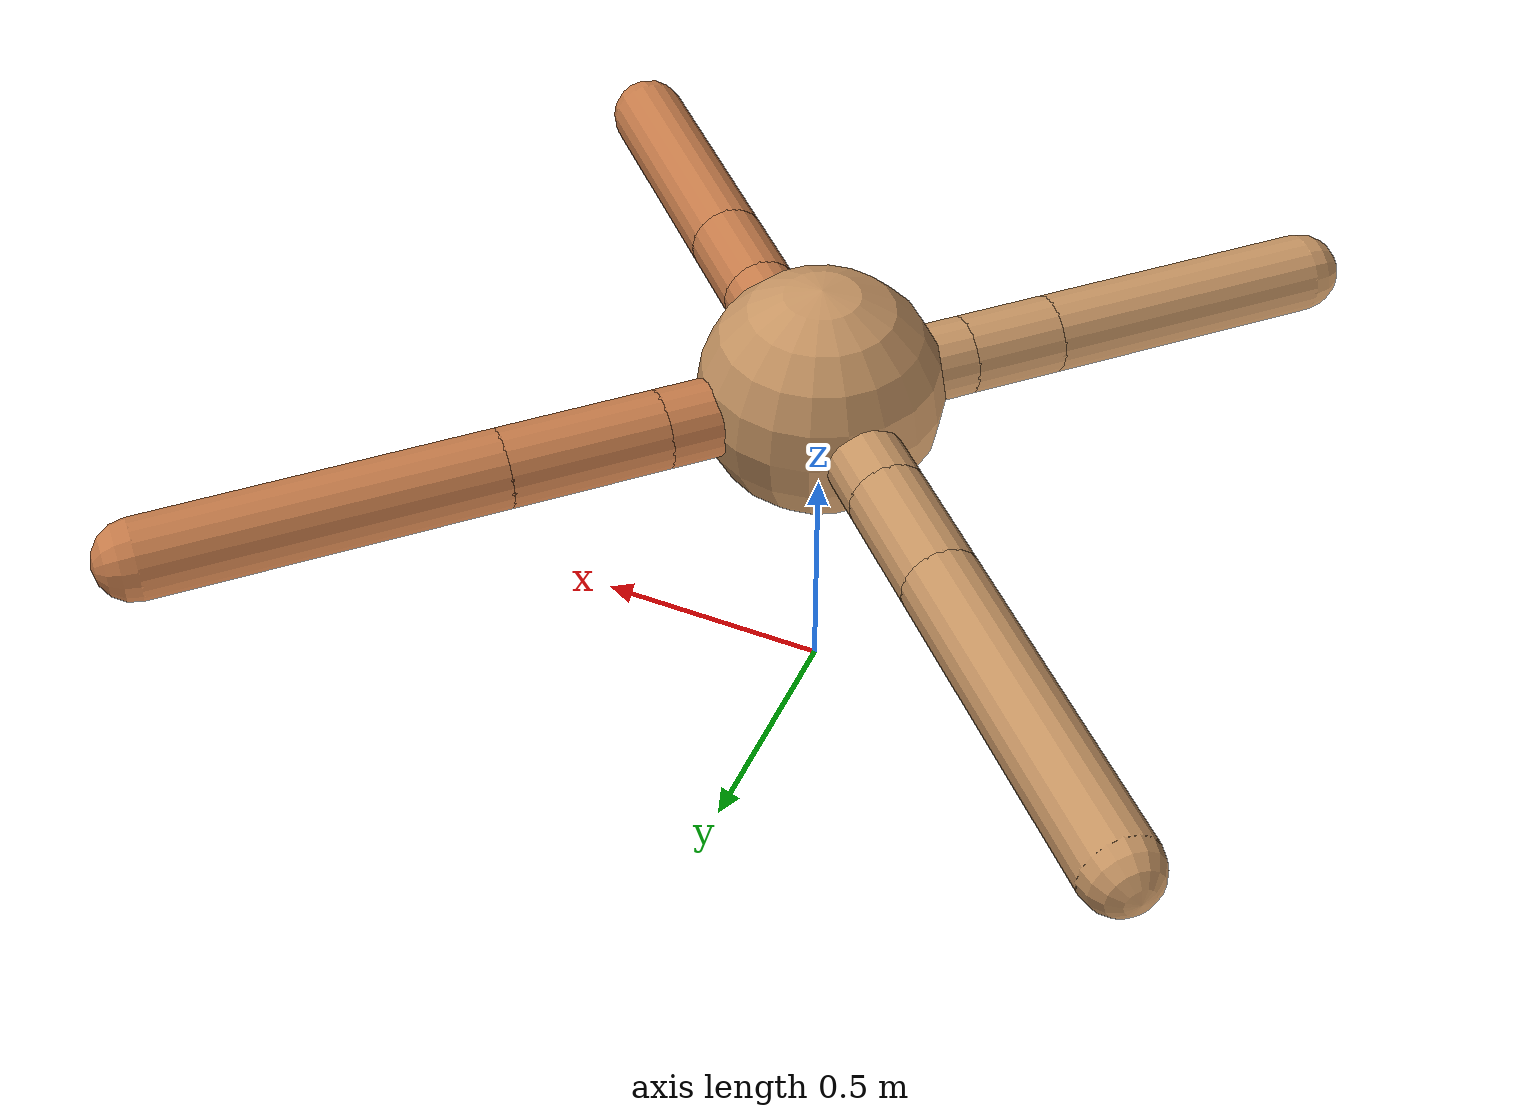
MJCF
<mujoco model="ant">
  <compiler angle="degree" coordinate="local" inertiafromgeom="true" />
  <option integrator="RK4" timestep="0.01" />
  <custom>
    <numeric data="0.0 0.0 0.55 1.0 0.0 0.0 0.0 0.0 1.0 0.0 -1.0 0.0 -1.0 0.0 1.0" name="init_qpos" />
  </custom>
  <default>
    <joint armature="1" damping="1" limited="true" />
    <geom conaffinity="0" condim="3" density="5.0" friction="1.5 0.1 0.1" margin="0.01" rgba="0.8 0.6 0.4 1" />
  </default>
  <worldbody>
    <body name="torso" pos="0 0 0.75">
      <geom name="torso_geom" pos="0 0 0" size="0.25" type="sphere" />

      <body name="front_left_leg" pos="0 0 0">
        <geom fromto="0.0 0.0 0.0 0.2371741470400664 0.2371741470400664 0.0" name="aux_1_geom" size="0.08" type="capsule" rgba=".8 .5 .3 1" />
        <body name="aux_1" pos="0.2371741470400664 0.2371741470400664 0.0">
          <joint axis="0 0 1" name="hip_1" pos="0.0 0.0 0.0" range="-40 40" type="hinge" />
          <geom fromto="0.0 0.0 0.0 0.22891009427981493 0.22891009427981493 0.0" name="left_leg_geom" size="0.08" type="capsule" rgba=".8 .5 .3 1" />
          <body pos="0.22891009427981493 0.22891009427981493 0.0" name="front_left_foot">
            <joint axis="-1 1 0" name="ankle_1" pos="0.0 0.0 0.0" range="30 100" type="hinge" />
            <geom fromto="0.0 0.0 0.0 0.5014194351615421 0.5014194351615421 0.0" name="left_ankle_geom" size="0.08" type="capsule" rgba=".8 .5 .3 1" />
          </body>
        </body>
      </body>
      <body name="front_right_leg" pos="0 0 0">
        <geom fromto="0.0 0.0 0.0 -0.23997202525444583 0.23997202525444583 0.0" name="aux_2_geom" size="0.08" type="capsule" />
        <body name="aux_2" pos="-0.23997202525444583 0.23997202525444583 0.0">
          <joint axis="0 0 1" name="hip_2" pos="0.0 0.0 0.0" range="-40 40" type="hinge" />
          <geom fromto="0.0 0.0 0.0 -0.1746745698083943 0.1746745698083943 0.0" name="right_leg_geom" size="0.08" type="capsule" />
          <body pos="-0.1746745698083943 0.1746745698083943 0.0" name="front_right_foot">
            <joint axis="1 1 0" name="ankle_2" pos="0.0 0.0 0.0" range="-100 -30" type="hinge" />
            <geom fromto="0.0 0.0 0.0 -0.5054949633734127 0.5054949633734127 0.0" name="right_ankle_geom" size="0.08" type="capsule" />
          </body>
        </body>
      </body>
      <body name="left_back_leg" pos="0 0 0">
        <geom fromto="0.0 0.0 0.0 -0.22170166331674157 -0.22170166331674157 0.0" name="aux_3_geom" size="0.08" type="capsule" />
        <body name="aux_3" pos="-0.22170166331674157 -0.22170166331674157 0.0">
          <joint axis="0 0 1" name="hip_3" pos="0.0 0.0 0.0" range="-40 40" type="hinge" />
          <geom fromto="0.0 0.0 0.0 -0.13473770891043688 -0.13473770891043688 0.0" name="back_leg_geom" size="0.08" type="capsule" />
          <body pos="-0.13473770891043688 -0.13473770891043688 0.0" name="left_back_foot">
            <joint axis="-1 1 0" name="ankle_3" pos="0.0 0.0 0.0" range="-100 -30" type="hinge" />
            <geom fromto="0.0 0.0 0.0 -0.4131313002957594 -0.4131313002957594 0.0" name="third_ankle_geom" size="0.08" type="capsule" />
          </body>
        </body>
      </body>
      <body name="right_back_leg" pos="0 0 0">
        <geom fromto="0.0 0.0 0.0 0.23817976523885886 -0.23817976523885886 0.0" name="aux_4_geom" size="0.08" type="capsule" rgba=".8 .5 .3 1" />
        <body name="aux_4" pos="0.23817976523885886 -0.23817976523885886 0.0">
          <joint axis="0 0 1" name="hip_4" pos="0.0 0.0 0.0" range="-40 40" type="hinge" />
          <geom fromto="0.0 0.0 0.0 0.1387984275248689 -0.1387984275248689 0.0" name="rightback_leg_geom" size="0.08" type="capsule" rgba=".8 .5 .3 1" />
          <body pos="0.1387984275248689 -0.1387984275248689 0.0" name="right_back_foot">
            <joint axis="1 1 0" name="ankle_4" pos="0.0 0.0 0.0" range="30 100" type="hinge" />
            <geom fromto="0.0 0.0 0.0 0.36435555418554433 -0.36435555418554433 0.0" name="fourth_ankle_geom" size="0.08" type="capsule" rgba=".8 .5 .3 1" />
          </body>
        </body>
      </body>
    </body>
  </worldbody>
  <actuator>
    <motor ctrllimited="true" ctrlrange="-1.0 1.0" joint="hip_4" gear="150" />
    <motor ctrllimited="true" ctrlrange="-1.0 1.0" joint="ankle_4" gear="150" />
    <motor ctrllimited="true" ctrlrange="-1.0 1.0" joint="hip_1" gear="150" />
    <motor ctrllimited="true" ctrlrange="-1.0 1.0" joint="ankle_1" gear="150" />
    <motor ctrllimited="true" ctrlrange="-1.0 1.0" joint="hip_2" gear="150" />
    <motor ctrllimited="true" ctrlrange="-1.0 1.0" joint="ankle_2" gear="150" />
    <motor ctrllimited="true" ctrlrange="-1.0 1.0" joint="hip_3" gear="150" />
    <motor ctrllimited="true" ctrlrange="-1.0 1.0" joint="ankle_3" gear="150" />
  </actuator>
</mujoco>
